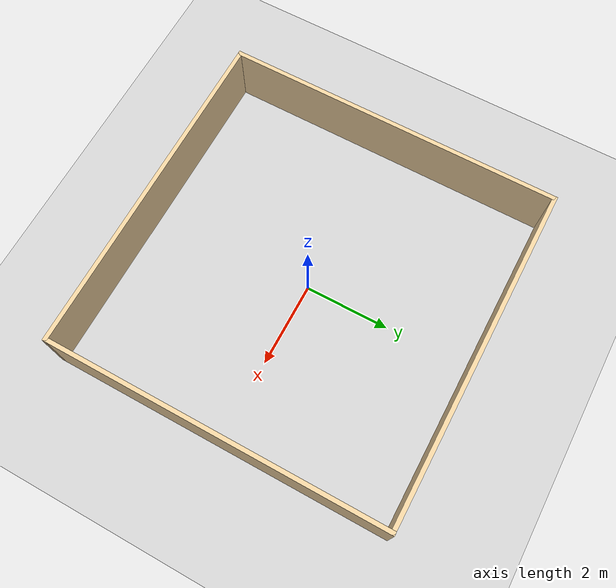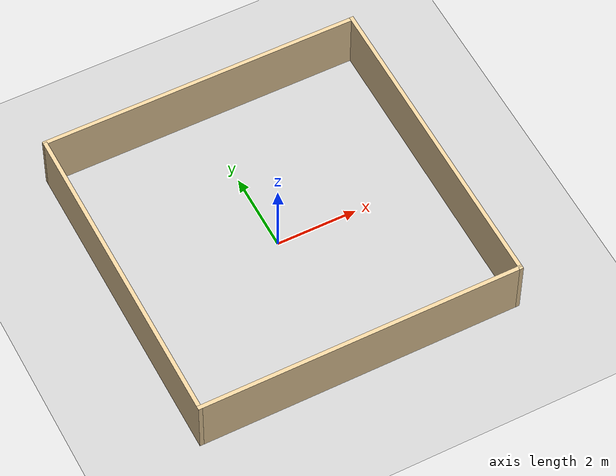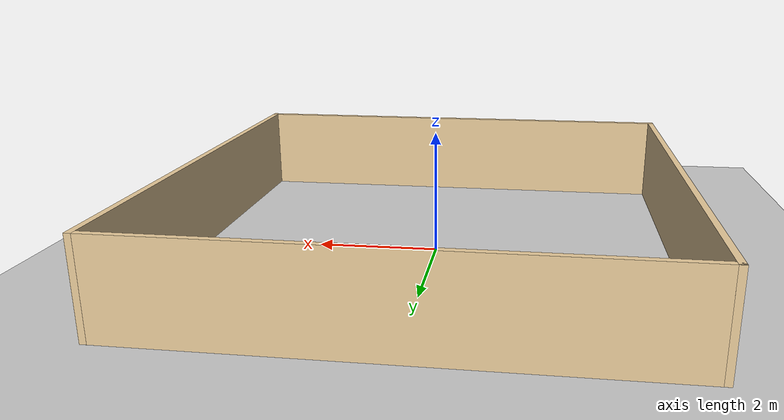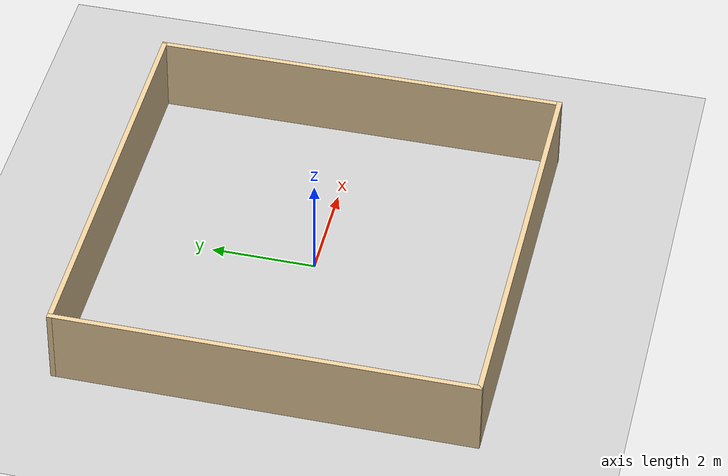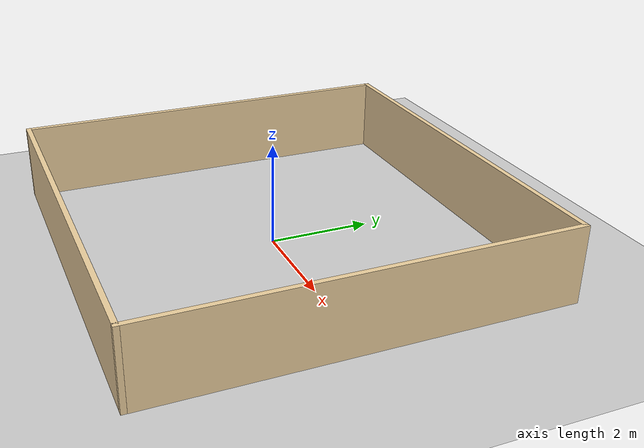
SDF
<?xml version="1.0"?>
<sdf version="1.6">
  <world name="default">
    <!-- A global light source -->
    <include>
      <uri>model://sun</uri>
    </include>
    <!-- A ground plane -->
    <include>
      <uri>model://ground_plane</uri>
    </include>

    <include>
      <uri>model://room</uri>
    </include>

    <gui fullscreen='0'>
        <camera name='user_camera'>
          <pose> 1.836854 -0.049893 1.498478 0.000000 0.589798 3.098637</pose>
          <view_controller>orbit</view_controller>
        </camera>
    </gui>

    <physics type="ode">
        <max_step_size>0.002</max_step_size>
        <real_time_factor>1</real_time_factor>
    </physics>
  </world>
</sdf>

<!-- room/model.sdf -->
<sdf version='1.7'>
  <model name='room'>
    <pose>-2.35191 -1.41681 0 0 -0 0</pose>
    <link name='Wall_0'>
      <collision name='Wall_0_Collision'>
        <geometry>
          <box>
            <size>8 0.1 1.5</size>
          </box>
        </geometry>
        <pose>0 1 0.75 0 -0 0</pose>
      </collision>
      <visual name='Wall_0_Visual'>
        <pose>0 1 0.75 0 -0 0</pose>
        <geometry>
          <box>
            <size>8 0.1 1.5</size>
          </box>
        </geometry>
        <material>
          <script>
            <uri>file://media/materials/scripts/gazebo.material</uri>
            <name>Gazebo/Grey</name>
          </script>
          <ambient>0.921569 0.807843 0.615686 1</ambient>
        </material>
        <meta>
          <layer>0</layer>
        </meta>
      </visual>
      <pose>5.35 1.45074 0 0 -0 -1.57083</pose>
    </link>
    <link name='Wall_2'>
      <collision name='Wall_2_Collision'>
        <geometry>
          <box>
            <size>8 0.1 1.5</size>
          </box>
        </geometry>
        <pose>0 1 0.75 0 -0 0</pose>
      </collision>
      <visual name='Wall_2_Visual'>
        <pose>0 1 0.75 0 -0 0</pose>
        <geometry>
          <box>
            <size>8 0.1 1.5</size>
          </box>
        </geometry>
        <material>
          <script>
            <uri>file://media/materials/scripts/gazebo.material</uri>
            <name>Gazebo/Grey</name>
          </script>
          <ambient>0.921569 0.807843 0.615686 1</ambient>
        </material>
        <meta>
          <layer>0</layer>
        </meta>
      </visual>
      <pose>2.39991 -1.49918 0 0 -0 3.14159</pose>
    </link>
    <link name='Wall_4'>
      <collision name='Wall_4_Collision'>
        <geometry>
          <box>
            <size>8 0.1 1.5</size>
          </box>
        </geometry>
        <pose>0 -1 0.75 0 -0 0</pose>
      </collision>
      <visual name='Wall_4_Visual'>
        <pose>0 -1 0.75 0 -0 0</pose>
        <geometry>
          <box>
            <size>8 0.1 1.5</size>
          </box>
        </geometry>
        <material>
          <script>
            <uri>file://media/materials/scripts/gazebo.material</uri>
            <name>Gazebo/Grey</name>
          </script>
          <ambient>0.921569 0.807843 0.615686 1</ambient>
        </material>
        <meta>
          <layer>0</layer>
        </meta>
      </visual>
      <pose>2.40009 4.40067 0 0 -0 3.14159</pose>
    </link>
    <link name='Wall_6'>
      <collision name='Wall_6_Collision'>
        <geometry>
          <box>
            <size>8 0.1 1.5</size>
          </box>
        </geometry>
        <pose>1.5 -1 0.75 0 -0 0</pose>
      </collision>
      <visual name='Wall_6_Visual'>
        <pose>1.5 -1 0.75 0 -0 0</pose>
        <geometry>
          <box>
            <size>8 0.1 1.5</size>
          </box>
        </geometry>
        <material>
          <script>
            <uri>file://media/materials/scripts/gazebo.material</uri>
            <name>Gazebo/Grey</name>
          </script>
          <ambient>0.921569 0.807843 0.615686 1</ambient>
        </material>
        <meta>
          <layer>0</layer>
        </meta>
      </visual>
      <pose>-0.549999 2.95074 0 0 -0 -1.57086</pose>
    </link>
    <static>1</static>
  </model>
</sdf>
